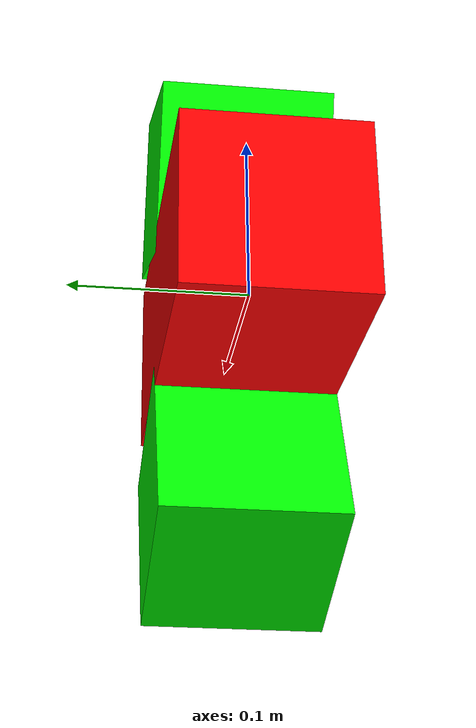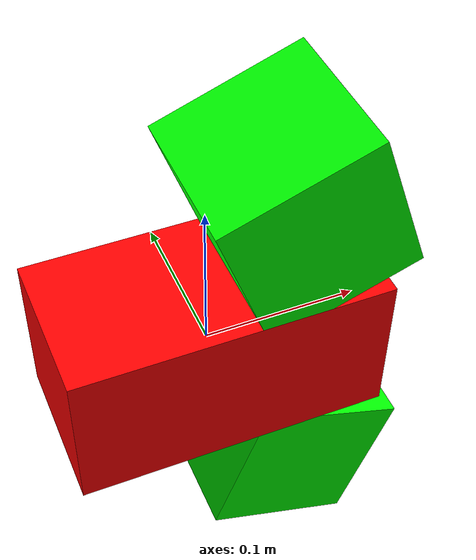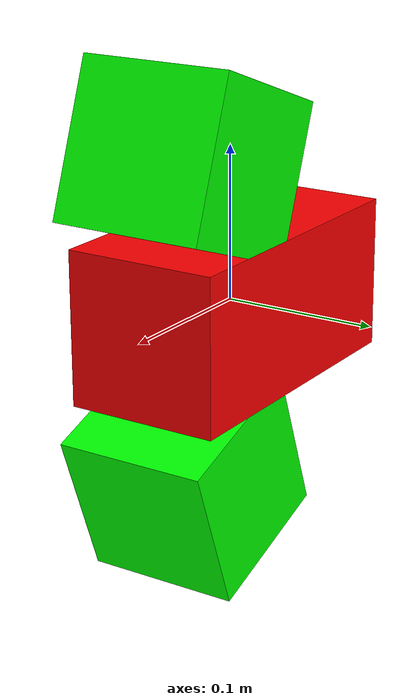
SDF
<?xml version="1.0"?>
<sdf version="1.4">

<model name="floating_sensor">
  <plugin name="floating_sensor_position_plugin" filename="libfloating_sensor_position_plugin.so">
  </plugin>

  <pose>0 0 0 0 0 0</pose>
  <static>true</static>

  <!-- LIDAR scanner. Simulates Hokuyo scanner -->
  <link name="laser_link">
    <pose>0 0 0 0 0 0</pose>
    <collision name="camera_collision">
      <geometry>
        <box>
          <size>0.2 0.1 0.1</size>
        </box>
      </geometry>
    </collision>

    <visual name="laser_visual">
      <geometry>
        <box>
          <size>0.2 0.1 0.1</size>
        </box>
      </geometry>
      <material>
          <ambient>1 0 0 1</ambient>
          <diffuse>1 0 0 1</diffuse>
          <specular>1 0 0 1</specular>
      </material>
    </visual>

    <sensor type="gpu_ray" name="floating_sensor_laser">
      <!-- 10 degrees downward pitch -->
      <pose>0.1 0 0 0 0.1745 0</pose>
      <visualize>true</visualize>
      <update_rate>40</update_rate>
      <ray>
        <scan>
          <horizontal>
            <samples>720</samples>
            <resolution>1</resolution>
            <min_angle>-1.570796</min_angle>
            <max_angle>1.570796</max_angle>
          </horizontal>
        </scan>
        <range>
          <min>0.10</min>
          <max>30.0</max>
          <resolution>0.01</resolution>
        </range>
        <noise>
          <type>gaussian</type>
          <mean>0.0</mean>
          <stddev>0.01</stddev>
        </noise>
      </ray>
      <plugin name="gazebo_ros_laser_scanner" filename="libgazebo_ros_gpu_laser.so">
        <gaussianNoise>0.005</gaussianNoise>
        <alwaysOn>true</alwaysOn>
        <topicName>scan</topicName>
        <frameName>laser_frame</frameName>
      </plugin>
    </sensor>
  </link>

  <!-- RGB-D camera (simulates Asus Xtion) -->
  <!-- above drone -->
  <link name="rgbd_link">
        <pose>0.05 0 0.1 0 -0.35 0</pose>
    <collision name="camera_collision">
      <geometry>
        <box>
          <size>0.1 0.1 0.1</size>
        </box>
      </geometry>
    </collision>

    <visual name="rgbd_visual">
      <geometry>
        <box>
          <size>0.1 0.1 0.1</size>
        </box>
      </geometry>
      <material>
          <ambient>0 1 0 1</ambient>
          <diffuse>0 1 0 1</diffuse>
          <specular>0 1 0 1</specular>
      </material>
    </visual>

    <sensor type="depth" name="floating_sensor_camera">
      <always_on>true</always_on>
      <update_rate>20.0</update_rate>
      <camera>
        <horizontal_fov>1.047197</horizontal_fov> <!-- 60 degrees -->
        <image>
          <format>R8G8B8</format>
          <width>640</width>
          <height>480</height>
        </image>
        <clip>
          <near>0.05</near>
          <far>8.0</far>
        </clip>
      </camera>

      <plugin name="floating_sensor_camera" filename="libgazebo_ros_openni_kinect.so">
        <cameraName>camera</cameraName>
        <alwaysOn>true</alwaysOn>
        <updateRate>10</updateRate>
        <imageTopicName>rgb/image_raw</imageTopicName>
        <depthImageTopicName>depth/image_raw</depthImageTopicName>
        <pointCloudTopicName>depth/points</pointCloudTopicName>
        <cameraInfoTopicName>rgb/camera_info</cameraInfoTopicName>
        <depthImageCameraInfoTopicName>depth/camera_info</depthImageCameraInfoTopicName>
        <frameName>camera_depth_optical_frame</frameName>
        <baseline>0.1</baseline>
        <distortion_k1>0.0</distortion_k1>
        <distortion_k2>0.0</distortion_k2>
        <distortion_k3>0.0</distortion_k3>
        <distortion_t1>0.0</distortion_t1>
        <distortion_t2>0.0</distortion_t2>
        <pointCloudCutoff>0.5</pointCloudCutoff>
      </plugin>
    </sensor>
  </link>

  <!-- RGB-D camera2 (simulates Asus Xtion) -->
  <!-- below drone -->
  <link name="rgbd2_link">
        <pose>0.05 0 -0.1 0 0.35 0</pose>
    <collision name="camera2_collision">
      <geometry>
        <box>
          <size>0.1 0.1 0.1</size>
        </box>
      </geometry>
    </collision>

    <visual name="rgbd2_visual">
      <geometry>
        <box>
          <size>0.1 0.1 0.1</size>
        </box>
      </geometry>
      <material>
          <ambient>0 1 0 1</ambient>
          <diffuse>0 1 0 1</diffuse>
          <specular>0 1 0 1</specular>
      </material>
    </visual>

    <sensor type="depth" name="floating_sensor_camera2">
      <always_on>true</always_on>
      <update_rate>20.0</update_rate>
      <camera>
        <horizontal_fov>1.047197</horizontal_fov> <!-- 60 degrees -->
        <image>
          <format>R8G8B8</format>
          <width>640</width>
          <height>480</height>
        </image>
        <clip>
          <near>0.05</near>
          <far>8.0</far>
        </clip>
      </camera>

      <plugin name="floating_sensor_camera2" filename="libgazebo_ros_openni_kinect.so">
        <cameraName>camera2</cameraName>
        <alwaysOn>true</alwaysOn>
        <updateRate>10</updateRate>
        <imageTopicName>rgb/image_raw</imageTopicName>
        <depthImageTopicName>depth/image_raw</depthImageTopicName>
        <pointCloudTopicName>depth/points</pointCloudTopicName>
        <cameraInfoTopicName>rgb/camera_info</cameraInfoTopicName>
        <depthImageCameraInfoTopicName>depth/camera_info</depthImageCameraInfoTopicName>
        <frameName>camera2_depth_optical_frame</frameName>
        <baseline>0.1</baseline>
        <distortion_k1>0.0</distortion_k1>
        <distortion_k2>0.0</distortion_k2>
        <distortion_k3>0.0</distortion_k3>
        <distortion_t1>0.0</distortion_t1>
        <distortion_t2>0.0</distortion_t2>
        <pointCloudCutoff>0.5</pointCloudCutoff>
      </plugin>
    </sensor>
  </link>

</model>
</sdf>
